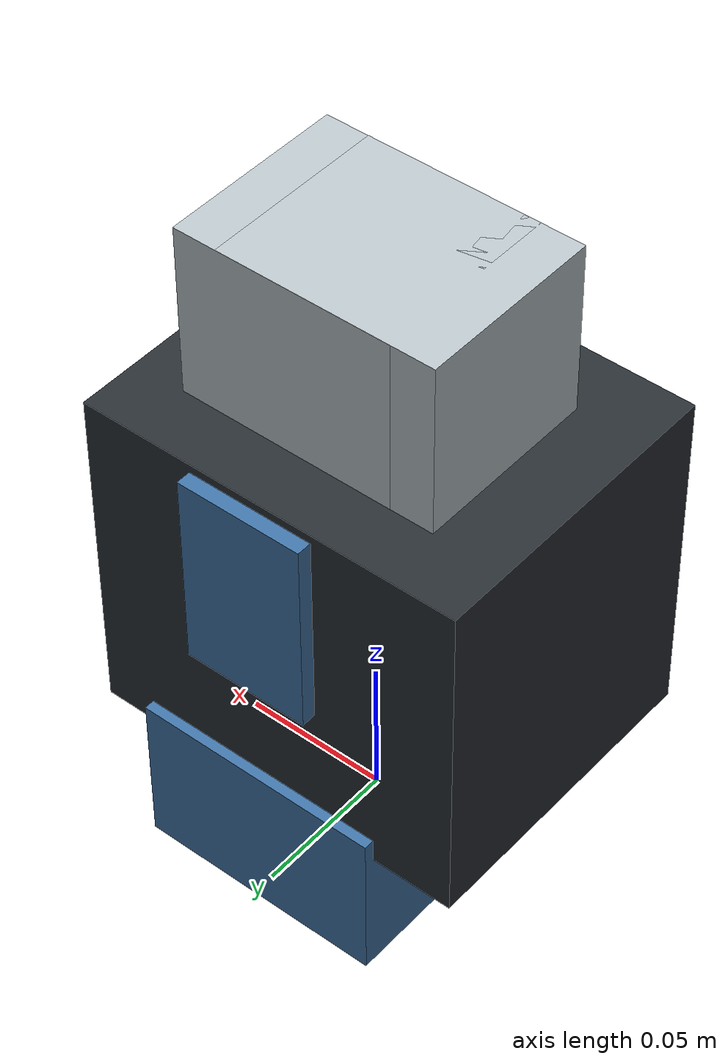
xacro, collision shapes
<?xml version="1.0"?>
<robot xmlns:xacro="http://www.ros.org/wiki/xacro" name="ATOM_UF850">
  <link name="world"/>
  <xacro:include filename="$(find atom_gripper_description)/urdf/atom_gripper_v2.urdf.xacro"/>
  <xacro:atom_gripper_v2 parent="world"><origin xyz="0 0 0" rpy="0 0 0"/></xacro:atom_gripper_v2>
</robot>

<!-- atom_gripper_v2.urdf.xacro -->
<robot xmlns:xacro="http://www.ros.org/wiki/xacro">
  <xacro:include filename="$(find atom_gripper_description)/urdf/atom_gripper.urdf.xacro"/>
  <xacro:include filename="$(find atom_gripper_description)/urdf/atom_mount_v2.urdf.xacro"/>
  <xacro:macro name="atom_gripper_v2" params="parent prefix:='' *origin">
    <!-- Flange clocking is nominal only. 51.964 mm is CAD-derived, not measured. -->
    <link name="${prefix}tool_flange"/>
    <joint name="${prefix}tool_flange_joint" type="fixed">
      <parent link="${parent}"/><child link="${prefix}tool_flange"/>
      <xacro:insert_block name="origin"/>
    </joint>
    <xacro:atom_gripper parent="${prefix}tool_flange" prefix="${prefix}">
      <origin xyz="0 0 0.051964" rpy="0 0 0"/>
    </xacro:atom_gripper>
    <xacro:atom_mount_v2 parent="${prefix}tool_flange" gripper_base="${prefix}gripper_base" prefix="${prefix}"/>
  </xacro:macro>
</robot>

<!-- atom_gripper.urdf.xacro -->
<robot xmlns:xacro="http://www.ros.org/wiki/xacro">
  <xacro:macro name="atom_box_inertial" params="mass x y z">
    <inertial>
      <mass value="${mass}"/>
      <inertia
        ixx="${mass * (y * y + z * z) / 12.0}" ixy="0" ixz="0"
        iyy="${mass * (x * x + z * z) / 12.0}" iyz="0"
        izz="${mass * (x * x + y * y) / 12.0}"/>
    </inertial>
  </xacro:macro>

  <xacro:macro name="atom_gripper" params="parent prefix:='' use_mimic:=true *origin">
    <link name="${prefix}gripper_mount"/>

    <joint name="${prefix}gripper_mount_joint" type="fixed">
      <parent link="${parent}"/>
      <child link="${prefix}gripper_mount"/>
      <xacro:insert_block name="origin"/>
    </joint>

    <link name="${prefix}gripper_base">
      <xacro:atom_box_inertial mass="0.48" x="0.120" y="0.105" z="0.110"/>
      <visual>
        <origin xyz="-0.043494 -0.022225 0.028836" rpy="1.5707963268 1.5707963268 0"/>
        <geometry>
          <mesh filename="package://atom_gripper_description/meshes/generated/base.stl" scale="0.001 0.001 0.001"/>
        </geometry>
        <material name="atom_body"><color rgba="0.16 0.18 0.20 1"/></material>
      </visual>
      <collision>
        <!-- Full inherited mesh AABB + 0.5 mm per side; CAD-only envelope. -->
        <origin xyz="-0.004999999 -0.000000002 0.051335998"/>
        <geometry><box size="0.131000004 0.106000000 0.118399998"/></geometry>
      </collision>
    </link>

    <joint name="${prefix}gripper_base_joint" type="fixed">
      <parent link="${prefix}gripper_mount"/>
      <child link="${prefix}gripper_base"/>
    </joint>

    <link name="${prefix}left_finger">
      <xacro:atom_box_inertial mass="0.05" x="0.008" y="0.030" z="0.075"/>
      <visual>
        <origin xyz="-0.043494 -0.022225 0.028836" rpy="1.5707963268 1.5707963268 0"/>
        <geometry>
          <mesh filename="package://atom_gripper_description/meshes/generated/left_finger.stl" scale="0.001 0.001 0.001"/>
        </geometry>
        <material name="atom_left_finger"><color rgba="0.72 0.76 0.78 1"/></material>
      </visual>
      <collision>
        <!-- Full inherited mesh AABB + 0.5 mm per side; CAD-only envelope. -->
        <origin xyz="0.005528131 0.000499999 0.115035999"/>
        <geometry><box size="0.073943745 0.062999999 0.106999996"/></geometry>
      </collision>
    </link>
    <joint name="${prefix}left_finger_joint" type="prismatic">
      <parent link="${prefix}gripper_base"/>
      <child link="${prefix}left_finger"/>
      <axis xyz="1 0 0"/>
      <limit lower="-0.015" upper="0.005" effort="20" velocity="0.03"/>
      <dynamics damping="0.5" friction="0.05"/>
    </joint>

    <link name="${prefix}right_finger">
      <xacro:atom_box_inertial mass="0.05" x="0.008" y="0.030" z="0.075"/>
      <visual>
        <origin xyz="-0.043494 -0.022225 0.028836" rpy="1.5707963268 1.5707963268 0"/>
        <geometry>
          <mesh filename="package://atom_gripper_description/meshes/generated/right_finger.stl" scale="0.001 0.001 0.001"/>
        </geometry>
        <material name="atom_right_finger"><color rgba="0.72 0.76 0.78 1"/></material>
      </visual>
      <collision>
        <!-- Full inherited mesh AABB + 0.5 mm per side; CAD-only envelope. -->
        <origin xyz="-0.009208677 0.000450000 0.115035999"/>
        <geometry><box size="0.073943744 0.062999999 0.106999996"/></geometry>
      </collision>
    </link>
    <joint name="${prefix}right_finger_joint" type="prismatic">
      <parent link="${prefix}gripper_base"/>
      <child link="${prefix}right_finger"/>
      <axis xyz="-1 0 0"/>
      <limit lower="-0.015" upper="0.005" effort="20" velocity="0.03"/>
      <dynamics damping="0.5" friction="0.05"/>
      <xacro:if value="${use_mimic}">
        <mimic joint="${prefix}left_finger_joint" multiplier="1.0" offset="0"/>
      </xacro:if>
    </joint>

    <link name="${prefix}gripper_tcp"/>
    <joint name="${prefix}gripper_tcp_joint" type="fixed">
      <parent link="${prefix}gripper_base"/>
      <child link="${prefix}gripper_tcp"/>
      <origin xyz="-0.0018 0 0.170536"/>
    </joint>

    <!-- Reported Silicone 20A / cuvette mean friction, N=10 inclined-plane trials. -->
    <gazebo reference="${prefix}left_finger">
      <mu1>0.88</mu1>
      <mu2>0.88</mu2>
    </gazebo>
    <gazebo reference="${prefix}right_finger">
      <mu1>0.88</mu1>
      <mu2>0.88</mu2>
    </gazebo>
  </xacro:macro>
</robot>

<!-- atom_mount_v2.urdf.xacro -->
<robot xmlns:xacro="http://www.ros.org/wiki/xacro">
  <!-- CAD-only placement; no measured mass/CoM. Not a dynamics model. -->
  <xacro:macro name="atom_mount_v2" params="parent gripper_base prefix:=''">
    <link name="${prefix}camera_bracket">
      <visual><origin xyz="-0.043494000 -0.022225000 0.028836000" rpy="1.5707963267948966 1.5707963267948966 0"/>
        <geometry><mesh filename="package://atom_gripper_description/meshes/generated/mount_v2/camera_bracket.stl" scale="0.001 0.001 0.001"/></geometry>
        <material name="atom_mount"><color rgba="0.25 0.45 0.65 1"/></material></visual>
      <collision><origin xyz="0.000000000 -0.048550000 0.075036000"/><geometry><box size="0.019000000 0.018900000 0.071000000"/></geometry></collision>
    </link>
    <joint name="${prefix}camera_bracket_joint" type="fixed"><parent link="${gripper_base}"/><child link="${prefix}camera_bracket"/></joint>
    <link name="${prefix}esp32_bracket">
      <visual><origin xyz="-0.043494000 -0.022225000 0.028836000" rpy="1.5707963267948966 1.5707963267948966 0"/>
        <geometry><mesh filename="package://atom_gripper_description/meshes/generated/mount_v2/esp32_bracket.stl" scale="0.001 0.001 0.001"/></geometry>
        <material name="atom_mount"><color rgba="0.25 0.45 0.65 1"/></material></visual>
      <collision><origin xyz="0.000000000 0.048550000 0.073536000"/><geometry><box size="0.043000000 0.018900000 0.068000000"/></geometry></collision>
    </link>
    <joint name="${prefix}esp32_bracket_joint" type="fixed"><parent link="${gripper_base}"/><child link="${prefix}esp32_bracket"/></joint>
    <link name="${prefix}flange_adapter">
      <visual><origin xyz="-0.043494000 -0.022225000 0.080800000" rpy="1.5707963267948966 1.5707963267948966 0"/>
        <geometry><mesh filename="package://atom_gripper_description/meshes/generated/mount_v2/flange_adapter.stl" scale="0.001 0.001 0.001"/></geometry>
        <material name="atom_mount"><color rgba="0.25 0.45 0.65 1"/></material></visual>
      <collision><origin xyz="0.000000000 -0.000000000 0.025000000"/><geometry><box size="0.085000000 0.113000000 0.055000000"/></geometry></collision>
    </link>
    <joint name="${prefix}flange_adapter_joint" type="fixed"><parent link="${parent}"/><child link="${prefix}flange_adapter"/></joint>
  </xacro:macro>
</robot>
